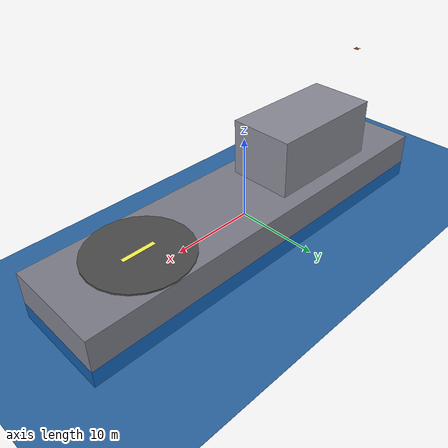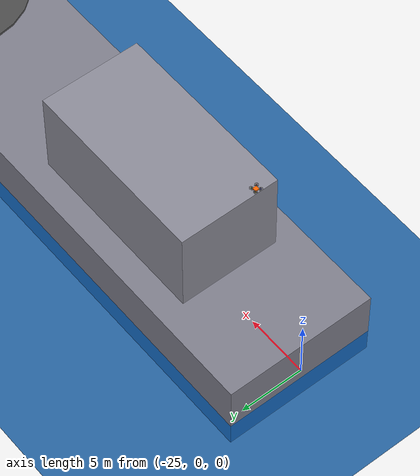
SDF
<?xml version="1.0" ?>
<sdf version="1.6">
  <world name="ship_landing_simple">

    <!-- Core system plugins -->
    <plugin filename="gz-sim-physics-system" name="gz::sim::systems::Physics"/>
    <plugin filename="gz-sim-scene-broadcaster-system" name="gz::sim::systems::SceneBroadcaster"/>
    <plugin filename="gz-sim-user-commands-system" name="gz::sim::systems::UserCommands"/>
    <plugin filename="gz-sim-sensors-system" name="gz::sim::systems::Sensors">
      <render_engine>ogre</render_engine>
    </plugin>
    <!-- Apply forces/torques to models -->
    <plugin filename="gz-sim-apply-link-wrench-system" name="gz::sim::systems::ApplyLinkWrench"/>

    <!-- Physics - smaller step size prevents tunneling -->
    <physics name="default_physics" type="dart">
      <max_step_size>0.0005</max_step_size>
      <real_time_factor>1</real_time_factor>
      <real_time_update_rate>2000</real_time_update_rate>
    </physics>

    <!-- Scene -->
    <scene>
      <ambient>0.6 0.6 0.7 1</ambient>
      <background>0.4 0.5 0.6 1</background>
      <shadows>true</shadows>
    </scene>

    <light type="directional" name="sun">
      <cast_shadows>true</cast_shadows>
      <pose>0 0 100 0 0 0</pose>
      <diffuse>0.8 0.8 0.8 1</diffuse>
      <specular>0.3 0.3 0.3 1</specular>
      <direction>-0.5 0.3 -1</direction>
    </light>

    <!-- Ocean visual (static, no physics) -->
    <model name="ocean">
      <static>true</static>
      <pose>0 0 -1 0 0 0</pose>
      <link name="link">
        <visual name="water">
          <geometry>
            <box><size>500 500 0.1</size></box>
          </geometry>
          <material>
            <ambient>0.0 0.2 0.4 0.8</ambient>
            <diffuse>0.0 0.3 0.6 0.8</diffuse>
            <specular>0.4 0.4 0.4 1</specular>
          </material>
        </visual>
      </link>
    </model>

    <!-- Ship (static for now - can add motion plugin later) -->
    <model name="ship">
      <static>true</static>
      <pose>0 0 0 0 0 0</pose>
      <link name="hull">
        <!-- Main hull collision - full height -->
        <collision name="hull_collision">
          <pose>0 0 0 0 0 0</pose>
          <geometry>
            <box><size>50 12 6</size></box>
          </geometry>
        </collision>

        <!-- Deck surface collision - thicker for reliability -->
        <collision name="deck_collision">
          <pose>0 0 3.5 0 0 0</pose>
          <geometry>
            <box><size>50 12 1</size></box>
          </geometry>
        </collision>

        <!-- Helipad collision -->
        <collision name="helipad_collision">
          <pose>15 0 3.2 0 0 0</pose>
          <geometry>
            <cylinder>
              <radius>6</radius>
              <length>0.5</length>
            </cylinder>
          </geometry>
        </collision>

        <!-- Hull visual -->
        <visual name="hull_visual">
          <pose>0 0 0 0 0 0</pose>
          <geometry>
            <box><size>50 12 6</size></box>
          </geometry>
          <material>
            <ambient>0.3 0.3 0.35 1</ambient>
            <diffuse>0.5 0.5 0.55 1</diffuse>
          </material>
        </visual>

        <!-- Superstructure -->
        <visual name="superstructure">
          <pose>-10 0 6 0 0 0</pose>
          <geometry>
            <box><size>15 8 8</size></box>
          </geometry>
          <material>
            <ambient>0.35 0.35 0.4 1</ambient>
            <diffuse>0.55 0.55 0.6 1</diffuse>
          </material>
        </visual>

        <!-- Helipad -->
        <visual name="helipad">
          <pose>15 0 3.1 0 0 0</pose>
          <geometry>
            <cylinder>
              <radius>6</radius>
              <length>0.2</length>
            </cylinder>
          </geometry>
          <material>
            <ambient>0.2 0.2 0.2 1</ambient>
            <diffuse>0.3 0.3 0.3 1</diffuse>
          </material>
        </visual>

        <!-- Helipad H marking -->
        <visual name="helipad_h">
          <pose>15 0 3.21 0 0 0</pose>
          <geometry>
            <box><size>4 0.5 0.01</size></box>
          </geometry>
          <material>
            <ambient>0.9 0.9 0.2 1</ambient>
            <diffuse>1.0 1.0 0.3 1</diffuse>
          </material>
        </visual>
      </link>
    </model>

    <!-- Quadcopter - starts above and behind helipad for approach -->
    <model name="quadcopter">
      <pose>-20 0 15 0 0 0</pose>
      <link name="base_link">
        <inertial>
          <mass>2.0</mass>
          <inertia>
            <ixx>0.02</ixx>
            <iyy>0.02</iyy>
            <izz>0.04</izz>
          </inertia>
        </inertial>

        <collision name="body_collision">
          <geometry>
            <box><size>0.4 0.4 0.15</size></box>
          </geometry>
        </collision>

        <!-- Bright orange body -->
        <visual name="body">
          <geometry>
            <box><size>0.3 0.3 0.1</size></box>
          </geometry>
          <material>
            <ambient>0.9 0.3 0.0 1</ambient>
            <diffuse>1.0 0.4 0.0 1</diffuse>
          </material>
        </visual>

        <!-- Arms -->
        <visual name="arm_fr">
          <pose>0.18 -0.18 0 0 0 0.785</pose>
          <geometry><box><size>0.28 0.03 0.02</size></box></geometry>
          <material><diffuse>0.2 0.2 0.2 1</diffuse></material>
        </visual>
        <visual name="arm_fl">
          <pose>0.18 0.18 0 0 0 -0.785</pose>
          <geometry><box><size>0.28 0.03 0.02</size></box></geometry>
          <material><diffuse>0.2 0.2 0.2 1</diffuse></material>
        </visual>
        <visual name="arm_br">
          <pose>-0.18 -0.18 0 0 0 -0.785</pose>
          <geometry><box><size>0.28 0.03 0.02</size></box></geometry>
          <material><diffuse>0.2 0.2 0.2 1</diffuse></material>
        </visual>
        <visual name="arm_bl">
          <pose>-0.18 0.18 0 0 0 0.785</pose>
          <geometry><box><size>0.28 0.03 0.02</size></box></geometry>
          <material><diffuse>0.2 0.2 0.2 1</diffuse></material>
        </visual>

        <!-- Motors -->
        <visual name="motor_fr">
          <pose>0.22 -0.22 0.03 0 0 0</pose>
          <geometry><cylinder><radius>0.035</radius><length>0.05</length></cylinder></geometry>
          <material><diffuse>0.9 0.1 0.1 1</diffuse></material>
        </visual>
        <visual name="motor_fl">
          <pose>0.22 0.22 0.03 0 0 0</pose>
          <geometry><cylinder><radius>0.035</radius><length>0.05</length></cylinder></geometry>
          <material><diffuse>0.1 0.9 0.1 1</diffuse></material>
        </visual>
        <visual name="motor_br">
          <pose>-0.22 -0.22 0.03 0 0 0</pose>
          <geometry><cylinder><radius>0.035</radius><length>0.05</length></cylinder></geometry>
          <material><diffuse>0.1 0.1 0.9 1</diffuse></material>
        </visual>
        <visual name="motor_bl">
          <pose>-0.22 0.22 0.03 0 0 0</pose>
          <geometry><cylinder><radius>0.035</radius><length>0.05</length></cylinder></geometry>
          <material><diffuse>0.9 0.9 0.1 1</diffuse></material>
        </visual>

        <!-- Propeller discs (semi-transparent) -->
        <visual name="prop_fr">
          <pose>0.22 -0.22 0.06 0 0 0</pose>
          <geometry><cylinder><radius>0.13</radius><length>0.005</length></cylinder></geometry>
          <material><diffuse>0.3 0.3 0.3 0.5</diffuse></material>
        </visual>
        <visual name="prop_fl">
          <pose>0.22 0.22 0.06 0 0 0</pose>
          <geometry><cylinder><radius>0.13</radius><length>0.005</length></cylinder></geometry>
          <material><diffuse>0.3 0.3 0.3 0.5</diffuse></material>
        </visual>
        <visual name="prop_br">
          <pose>-0.22 -0.22 0.06 0 0 0</pose>
          <geometry><cylinder><radius>0.13</radius><length>0.005</length></cylinder></geometry>
          <material><diffuse>0.3 0.3 0.3 0.5</diffuse></material>
        </visual>
        <visual name="prop_bl">
          <pose>-0.22 0.22 0.06 0 0 0</pose>
          <geometry><cylinder><radius>0.13</radius><length>0.005</length></cylinder></geometry>
          <material><diffuse>0.3 0.3 0.3 0.5</diffuse></material>
        </visual>

        <!-- Landing gear -->
        <visual name="gear_fl">
          <pose>0.12 0.12 -0.1 0 0 0</pose>
          <geometry><cylinder><radius>0.012</radius><length>0.15</length></cylinder></geometry>
          <material><diffuse>0.15 0.15 0.15 1</diffuse></material>
        </visual>
        <visual name="gear_fr">
          <pose>0.12 -0.12 -0.1 0 0 0</pose>
          <geometry><cylinder><radius>0.012</radius><length>0.15</length></cylinder></geometry>
          <material><diffuse>0.15 0.15 0.15 1</diffuse></material>
        </visual>
        <visual name="gear_bl">
          <pose>-0.12 0.12 -0.1 0 0 0</pose>
          <geometry><cylinder><radius>0.012</radius><length>0.15</length></cylinder></geometry>
          <material><diffuse>0.15 0.15 0.15 1</diffuse></material>
        </visual>
        <visual name="gear_br">
          <pose>-0.12 -0.12 -0.1 0 0 0</pose>
          <geometry><cylinder><radius>0.012</radius><length>0.15</length></cylinder></geometry>
          <material><diffuse>0.15 0.15 0.15 1</diffuse></material>
        </visual>
      </link>
    </model>

    <!-- Camera - view of helipad -->
    <gui fullscreen='0'>
      <camera name='user_camera'>
        <pose>-20 -20 15 0 0.35 0.8</pose>
        <view_controller>orbit</view_controller>
      </camera>
    </gui>

  </world>
</sdf>
